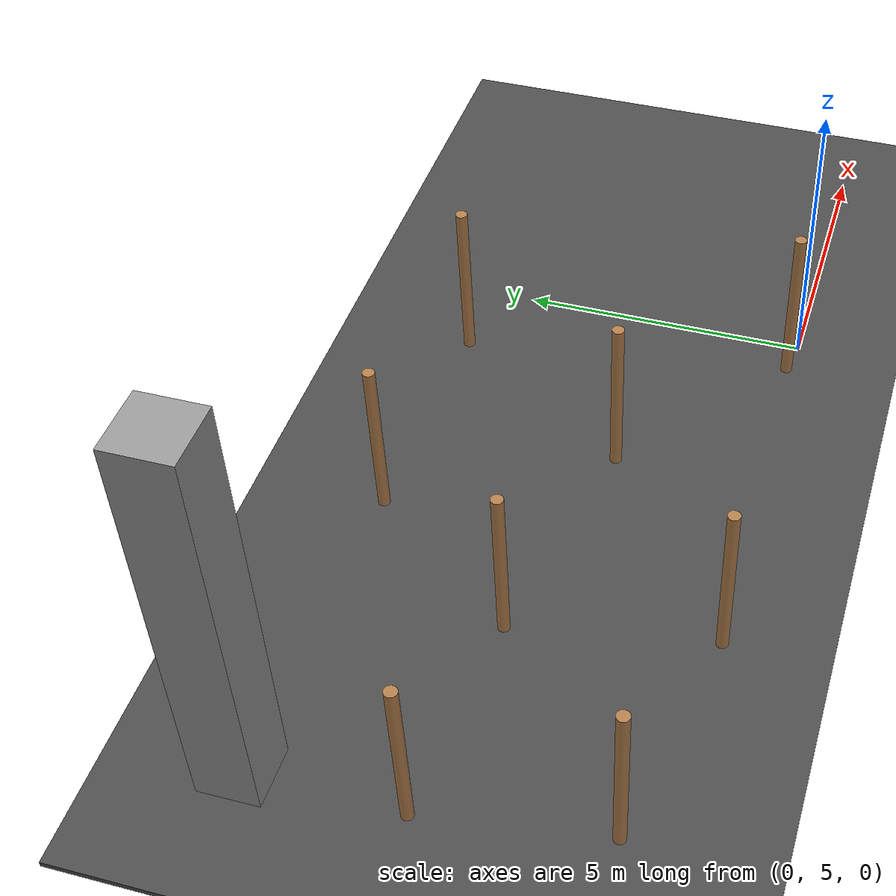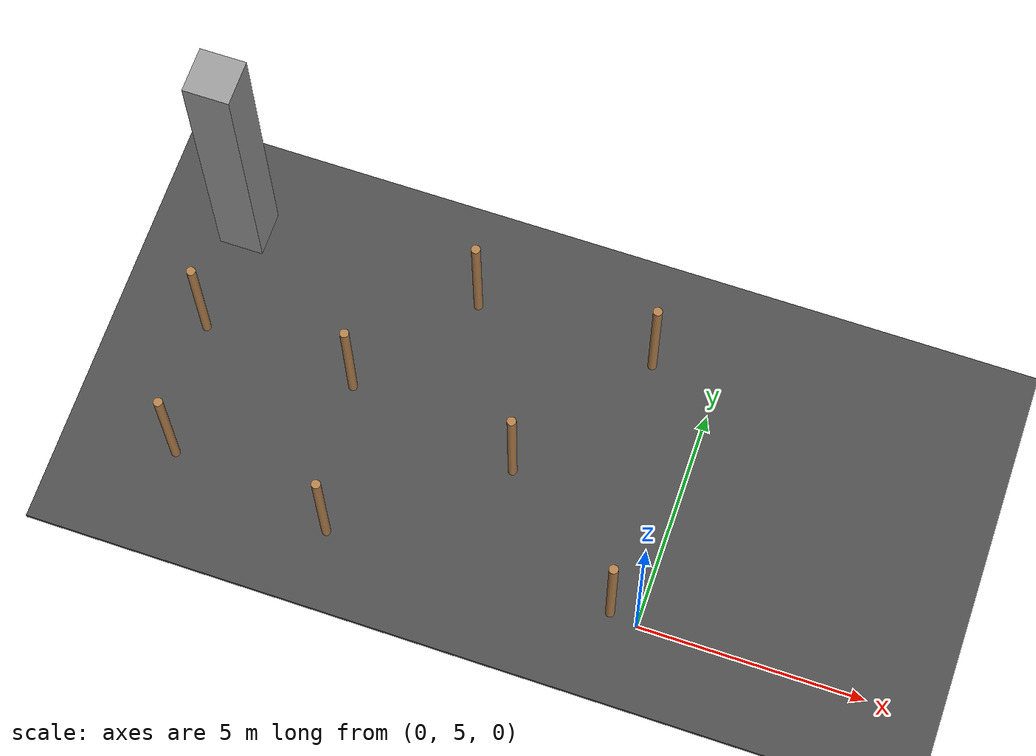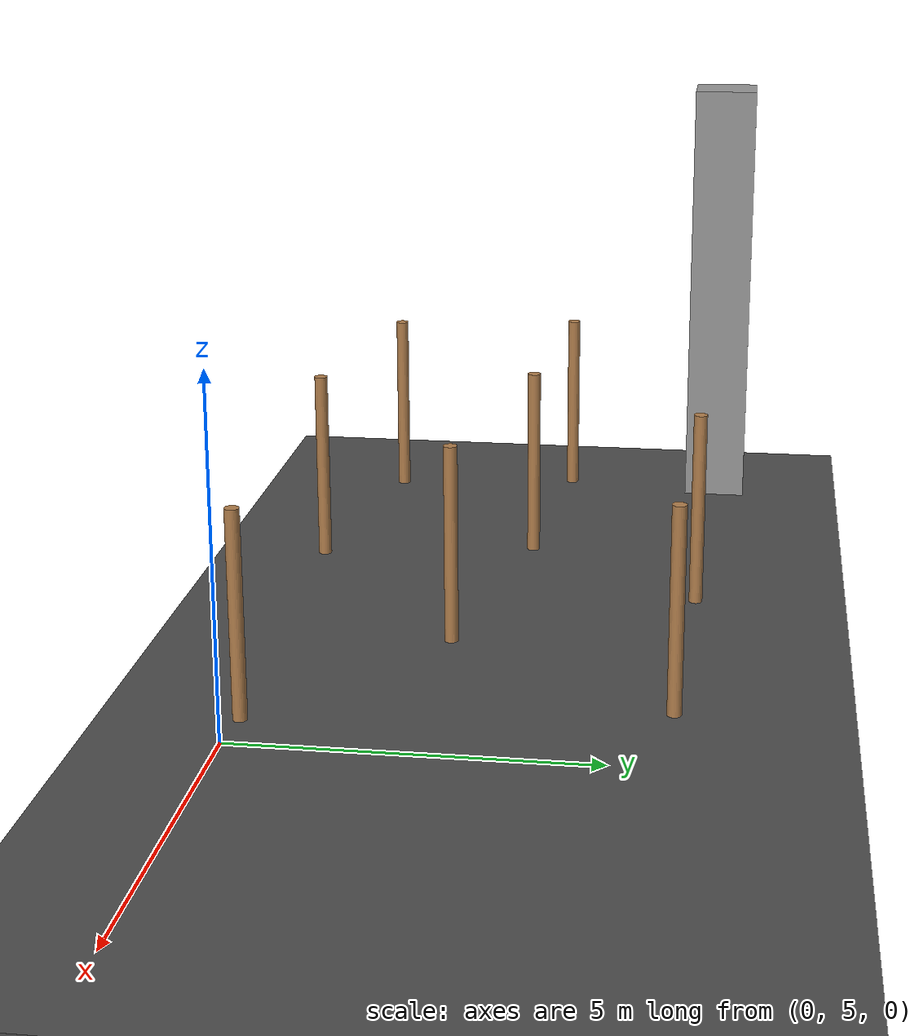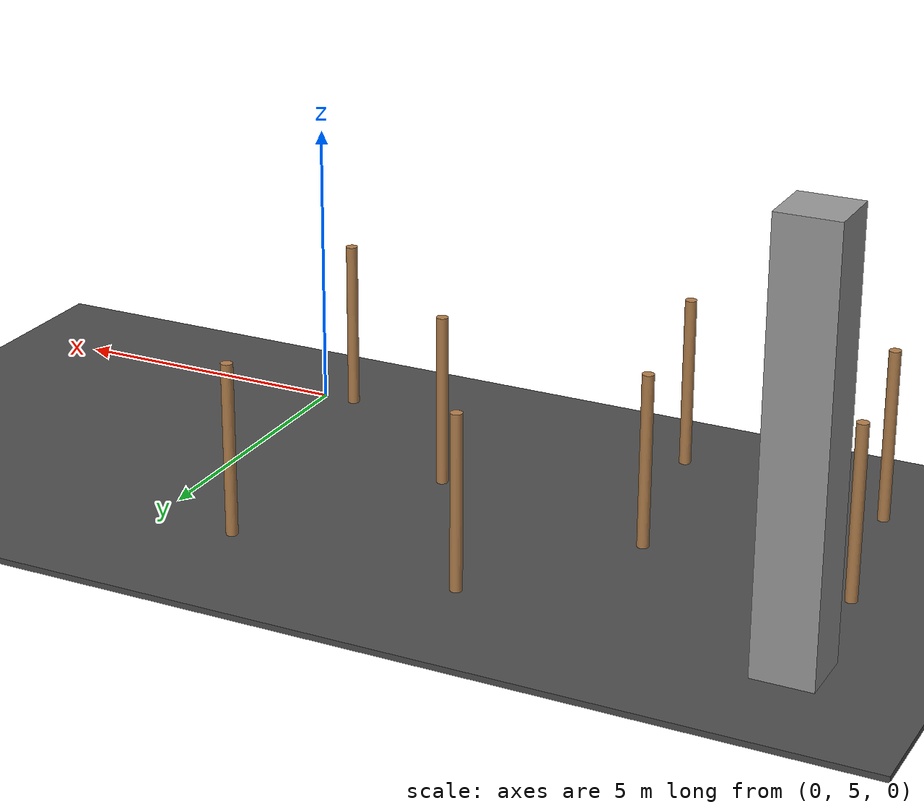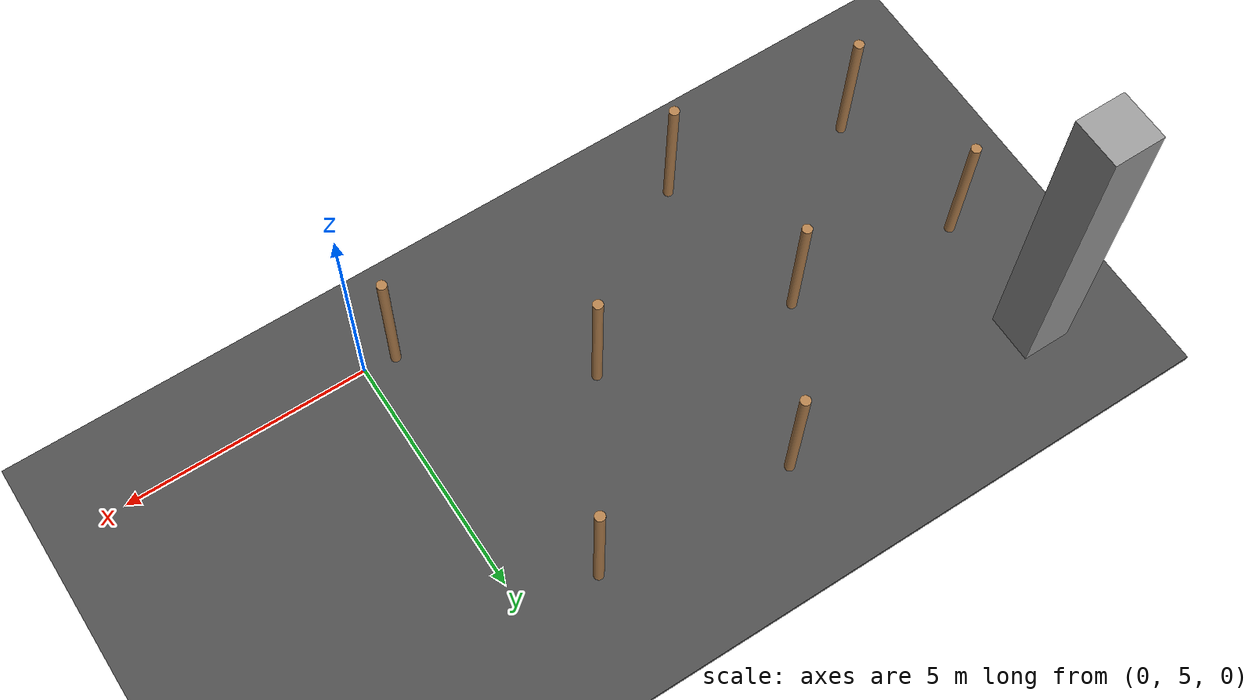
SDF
<sdf version="1.7">
 <world name="default">
  <model name="asphalt_plane">
   <pose>-0.054783 -0.070898 0 0 -0 0</pose>
   <static>1</static>
   <link name="link">
    <collision name="collision"><geometry><box><size>42.4866 44.6464 0.1</size></box></geometry></collision>
    <visual name="visual">
     <cast_shadows>0</cast_shadows>
     <geometry><box><size>42.4866 44.6464 0.1</size></box></geometry>
     <material>
      <script>
       <uri>model://asphalt_plane/materials/scripts</uri>
       <uri>model://asphalt_plane/materials/textures</uri>
       <name>vrc/asphalt</name>
      </script>
     </material>
    </visual>
   </link>
  </model>
  <model name="wooden_cylinder1_clone_0">
   <pose>-11.0868 8.52775 -6e-05 0 -0 0</pose>
   <link name="wooden_cylinder::link_0">
    <pose>0 0 1.5 0 -0 0</pose>
    <inertial>
     <mass>1</mass>
     <inertia><ixx>0.145833</ixx><ixy>0</ixy><ixz>0</ixz><iyy>0.145833</iyy><iyz>0</iyz><izz>0.125</izz></inertia>
    </inertial>
    <visual name="visual">
     <geometry><cylinder><radius>0.1</radius><length>3</length></cylinder></geometry>
     <material>
      <lighting>1</lighting>
      <script><uri>file://media/materials/scripts/gazebo.material</uri><name>Gazebo/Wood</name></script>
      <ambient>0.3 0.3 0.3 1</ambient>
      <diffuse>0.7 0.7 0.7 1</diffuse>
      <specular>0.01 0.01 0.01 1</specular>
      <emissive>0 0 0 1</emissive>
      <shader type="vertex"><normal_map>__default__</normal_map></shader>
     </material>
    </visual>
    <collision name="collision">
     <geometry><cylinder><radius>0.1</radius><length>3</length></cylinder></geometry>
     <surface>
      <friction>
       <ode><mu>1</mu><mu2>1</mu2><fdir1>0 0 0</fdir1><slip1>0</slip1><slip2>0</slip2></ode>
       <torsional>
        <coefficient>1</coefficient>
        <patch_radius>0</patch_radius>
        <surface_radius>0</surface_radius>
        <use_patch_radius>1</use_patch_radius>
        <ode><slip>0</slip></ode>
       </torsional>
      </friction>
      <bounce><restitution_coefficient>0</restitution_coefficient><threshold>1e+06</threshold></bounce>
      <contact>
       <collide_without_contact>0</collide_without_contact>
       <collide_without_contact_bitmask>1</collide_without_contact_bitmask>
       <collide_bitmask>1</collide_bitmask>
       <ode>
        <soft_cfm>0</soft_cfm>
        <soft_erp>0.2</soft_erp>
        <kp>1e+13</kp>
        <kd>1</kd>
        <max_vel>0.01</max_vel>
        <min_depth>0</min_depth>
       </ode>
       <bullet>
        <split_impulse>1</split_impulse>
        <split_impulse_penetration_threshold>-0.01</split_impulse_penetration_threshold>
        <soft_cfm>0</soft_cfm>
        <soft_erp>0.2</soft_erp>
        <kp>1e+13</kp>
        <kd>1</kd>
       </bullet>
      </contact>
     </surface>
    </collision>
   </link>
   <static>1</static>
  </model>
  <model name="wooden_cylinder1_clone_2">
   <pose>-10.6472 5.54644 0.0002 0 -0 0</pose>
   <link name="wooden_cylinder::link_0">
    <pose>0 0 1.5 0 -0 0</pose>
    <inertial>
     <mass>1</mass>
     <inertia><ixx>0.145833</ixx><ixy>0</ixy><ixz>0</ixz><iyy>0.145833</iyy><iyz>0</iyz><izz>0.125</izz></inertia>
    </inertial>
    <visual name="visual">
     <geometry><cylinder><radius>0.1</radius><length>3</length></cylinder></geometry>
     <material>
      <lighting>1</lighting>
      <script><uri>file://media/materials/scripts/gazebo.material</uri><name>Gazebo/Wood</name></script>
      <ambient>0.3 0.3 0.3 1</ambient>
      <diffuse>0.7 0.7 0.7 1</diffuse>
      <specular>0.01 0.01 0.01 1</specular>
      <emissive>0 0 0 1</emissive>
      <shader type="vertex"><normal_map>__default__</normal_map></shader>
     </material>
    </visual>
    <collision name="collision">
     <geometry><cylinder><radius>0.1</radius><length>3</length></cylinder></geometry>
     <surface>
      <friction>
       <ode><mu>1</mu><mu2>1</mu2><fdir1>0 0 0</fdir1><slip1>0</slip1><slip2>0</slip2></ode>
       <torsional>
        <coefficient>1</coefficient>
        <patch_radius>0</patch_radius>
        <surface_radius>0</surface_radius>
        <use_patch_radius>1</use_patch_radius>
        <ode><slip>0</slip></ode>
       </torsional>
      </friction>
      <bounce><restitution_coefficient>0</restitution_coefficient><threshold>1e+06</threshold></bounce>
      <contact>
       <collide_without_contact>0</collide_without_contact>
       <collide_without_contact_bitmask>1</collide_without_contact_bitmask>
       <collide_bitmask>1</collide_bitmask>
       <ode>
        <soft_cfm>0</soft_cfm>
        <soft_erp>0.2</soft_erp>
        <kp>1e+13</kp>
        <kd>1</kd>
        <max_vel>0.01</max_vel>
        <min_depth>0</min_depth>
       </ode>
       <bullet>
        <split_impulse>1</split_impulse>
        <split_impulse_penetration_threshold>-0.01</split_impulse_penetration_threshold>
        <soft_cfm>0</soft_cfm>
        <soft_erp>0.2</soft_erp>
        <kp>1e+13</kp>
        <kd>1</kd>
       </bullet>
      </contact>
     </surface>
    </collision>
   </link>
   <static>1</static>
  </model>
  <model name="wooden_cylinder1_clone_29">
   <pose>-6.93659 4.8959 2e-05 0 -0 0</pose>
   <link name="wooden_cylinder::link_0">
    <pose>0 0 1.5 0 -0 0</pose>
    <inertial>
     <mass>1</mass>
     <inertia><ixx>0.145833</ixx><ixy>0</ixy><ixz>0</ixz><iyy>0.145833</iyy><iyz>0</iyz><izz>0.125</izz></inertia>
    </inertial>
    <visual name="visual">
     <geometry><cylinder><radius>0.1</radius><length>3</length></cylinder></geometry>
     <material>
      <lighting>1</lighting>
      <script><uri>file://media/materials/scripts/gazebo.material</uri><name>Gazebo/Wood</name></script>
      <ambient>0.3 0.3 0.3 1</ambient>
      <diffuse>0.7 0.7 0.7 1</diffuse>
      <specular>0.01 0.01 0.01 1</specular>
      <emissive>0 0 0 1</emissive>
      <shader type="vertex"><normal_map>__default__</normal_map></shader>
     </material>
    </visual>
    <collision name="collision">
     <geometry><cylinder><radius>0.1</radius><length>3</length></cylinder></geometry>
     <surface>
      <friction>
       <ode><mu>1</mu><mu2>1</mu2><fdir1>0 0 0</fdir1><slip1>0</slip1><slip2>0</slip2></ode>
       <torsional>
        <coefficient>1</coefficient>
        <patch_radius>0</patch_radius>
        <surface_radius>0</surface_radius>
        <use_patch_radius>1</use_patch_radius>
        <ode><slip>0</slip></ode>
       </torsional>
      </friction>
      <bounce><restitution_coefficient>0</restitution_coefficient><threshold>1e+06</threshold></bounce>
      <contact>
       <collide_without_contact>0</collide_without_contact>
       <collide_without_contact_bitmask>1</collide_without_contact_bitmask>
       <collide_bitmask>1</collide_bitmask>
       <ode>
        <soft_cfm>0</soft_cfm>
        <soft_erp>0.2</soft_erp>
        <kp>1e+13</kp>
        <kd>1</kd>
        <max_vel>0.01</max_vel>
        <min_depth>0</min_depth>
       </ode>
       <bullet>
        <split_impulse>1</split_impulse>
        <split_impulse_penetration_threshold>-0.01</split_impulse_penetration_threshold>
        <soft_cfm>0</soft_cfm>
        <soft_erp>0.2</soft_erp>
        <kp>1e+13</kp>
        <kd>1</kd>
       </bullet>
      </contact>
     </surface>
    </collision>
   </link>
   <static>1</static>
  </model>
  <model name="wooden_cylinder1_clone_31">
   <pose>-7.54136 8.21907 -8e-05 0 -0 0</pose>
   <link name="wooden_cylinder::link_0">
    <pose>0 0 1.5 0 -0 0</pose>
    <inertial>
     <mass>1</mass>
     <inertia><ixx>0.145833</ixx><ixy>0</ixy><ixz>0</ixz><iyy>0.145833</iyy><iyz>0</iyz><izz>0.125</izz></inertia>
    </inertial>
    <visual name="visual">
     <geometry><cylinder><radius>0.1</radius><length>3</length></cylinder></geometry>
     <material>
      <lighting>1</lighting>
      <script><uri>file://media/materials/scripts/gazebo.material</uri><name>Gazebo/Wood</name></script>
      <ambient>0.3 0.3 0.3 1</ambient>
      <diffuse>0.7 0.7 0.7 1</diffuse>
      <specular>0.01 0.01 0.01 1</specular>
      <emissive>0 0 0 1</emissive>
      <shader type="vertex"><normal_map>__default__</normal_map></shader>
     </material>
    </visual>
    <collision name="collision">
     <geometry><cylinder><radius>0.1</radius><length>3</length></cylinder></geometry>
     <surface>
      <friction>
       <ode><mu>1</mu><mu2>1</mu2><fdir1>0 0 0</fdir1><slip1>0</slip1><slip2>0</slip2></ode>
       <torsional>
        <coefficient>1</coefficient>
        <patch_radius>0</patch_radius>
        <surface_radius>0</surface_radius>
        <use_patch_radius>1</use_patch_radius>
        <ode><slip>0</slip></ode>
       </torsional>
      </friction>
      <bounce><restitution_coefficient>0</restitution_coefficient><threshold>1e+06</threshold></bounce>
      <contact>
       <collide_without_contact>0</collide_without_contact>
       <collide_without_contact_bitmask>1</collide_without_contact_bitmask>
       <collide_bitmask>1</collide_bitmask>
       <ode>
        <soft_cfm>0</soft_cfm>
        <soft_erp>0.2</soft_erp>
        <kp>1e+13</kp>
        <kd>1</kd>
        <max_vel>0.01</max_vel>
        <min_depth>0</min_depth>
       </ode>
       <bullet>
        <split_impulse>1</split_impulse>
        <split_impulse_penetration_threshold>-0.01</split_impulse_penetration_threshold>
        <soft_cfm>0</soft_cfm>
        <soft_erp>0.2</soft_erp>
        <kp>1e+13</kp>
        <kd>1</kd>
       </bullet>
      </contact>
     </surface>
    </collision>
   </link>
   <static>1</static>
  </model>
  <model name="wooden_cylinder1_clone_33">
   <pose>-3.60261 7.46972 3e-05 0 -0 0</pose>
   <link name="wooden_cylinder::link_0">
    <pose>0 0 1.5 0 -0 0</pose>
    <inertial>
     <mass>1</mass>
     <inertia><ixx>0.145833</ixx><ixy>0</ixy><ixz>0</ixz><iyy>0.145833</iyy><iyz>0</iyz><izz>0.125</izz></inertia>
    </inertial>
    <visual name="visual">
     <geometry><cylinder><radius>0.1</radius><length>3</length></cylinder></geometry>
     <material>
      <lighting>1</lighting>
      <script><uri>file://media/materials/scripts/gazebo.material</uri><name>Gazebo/Wood</name></script>
      <ambient>0.3 0.3 0.3 1</ambient>
      <diffuse>0.7 0.7 0.7 1</diffuse>
      <specular>0.01 0.01 0.01 1</specular>
      <emissive>0 0 0 1</emissive>
      <shader type="vertex"><normal_map>__default__</normal_map></shader>
     </material>
    </visual>
    <collision name="collision">
     <geometry><cylinder><radius>0.1</radius><length>3</length></cylinder></geometry>
     <surface>
      <friction>
       <ode><mu>1</mu><mu2>1</mu2><fdir1>0 0 0</fdir1><slip1>0</slip1><slip2>0</slip2></ode>
       <torsional>
        <coefficient>1</coefficient>
        <patch_radius>0</patch_radius>
        <surface_radius>0</surface_radius>
        <use_patch_radius>1</use_patch_radius>
        <ode><slip>0</slip></ode>
       </torsional>
      </friction>
      <bounce><restitution_coefficient>0</restitution_coefficient><threshold>1e+06</threshold></bounce>
      <contact>
       <collide_without_contact>0</collide_without_contact>
       <collide_without_contact_bitmask>1</collide_without_contact_bitmask>
       <collide_bitmask>1</collide_bitmask>
       <ode>
        <soft_cfm>0</soft_cfm>
        <soft_erp>0.2</soft_erp>
        <kp>1e+13</kp>
        <kd>1</kd>
        <max_vel>0.01</max_vel>
        <min_depth>0</min_depth>
       </ode>
       <bullet>
        <split_impulse>1</split_impulse>
        <split_impulse_penetration_threshold>-0.01</split_impulse_penetration_threshold>
        <soft_cfm>0</soft_cfm>
        <soft_erp>0.2</soft_erp>
        <kp>1e+13</kp>
        <kd>1</kd>
       </bullet>
      </contact>
     </surface>
    </collision>
   </link>
   <static>1</static>
  </model>
  <model name="wooden_cylinder1_clone_34">
   <pose>-0.627193 5.1014 0.00013 0 -0 0</pose>
   <link name="wooden_cylinder::link_0">
    <pose>0 0 1.5 0 -0 0</pose>
    <inertial>
     <mass>1</mass>
     <inertia><ixx>0.145833</ixx><ixy>0</ixy><ixz>0</ixz><iyy>0.145833</iyy><iyz>0</iyz><izz>0.125</izz></inertia>
    </inertial>
    <visual name="visual">
     <geometry><cylinder><radius>0.1</radius><length>3</length></cylinder></geometry>
     <material>
      <lighting>1</lighting>
      <script><uri>file://media/materials/scripts/gazebo.material</uri><name>Gazebo/Wood</name></script>
      <ambient>0.3 0.3 0.3 1</ambient>
      <diffuse>0.7 0.7 0.7 1</diffuse>
      <specular>0.01 0.01 0.01 1</specular>
      <emissive>0 0 0 1</emissive>
      <shader type="vertex"><normal_map>__default__</normal_map></shader>
     </material>
    </visual>
    <collision name="collision">
     <geometry><cylinder><radius>0.1</radius><length>3</length></cylinder></geometry>
     <surface>
      <friction>
       <ode><mu>1</mu><mu2>1</mu2><fdir1>0 0 0</fdir1><slip1>0</slip1><slip2>0</slip2></ode>
       <torsional>
        <coefficient>1</coefficient>
        <patch_radius>0</patch_radius>
        <surface_radius>0</surface_radius>
        <use_patch_radius>1</use_patch_radius>
        <ode><slip>0</slip></ode>
       </torsional>
      </friction>
      <bounce><restitution_coefficient>0</restitution_coefficient><threshold>1e+06</threshold></bounce>
      <contact>
       <collide_without_contact>0</collide_without_contact>
       <collide_without_contact_bitmask>1</collide_without_contact_bitmask>
       <collide_bitmask>1</collide_bitmask>
       <ode>
        <soft_cfm>0</soft_cfm>
        <soft_erp>0.2</soft_erp>
        <kp>1e+13</kp>
        <kd>1</kd>
        <max_vel>0.01</max_vel>
        <min_depth>0</min_depth>
       </ode>
       <bullet>
        <split_impulse>1</split_impulse>
        <split_impulse_penetration_threshold>-0.01</split_impulse_penetration_threshold>
        <soft_cfm>0</soft_cfm>
        <soft_erp>0.2</soft_erp>
        <kp>1e+13</kp>
        <kd>1</kd>
       </bullet>
      </contact>
     </surface>
    </collision>
   </link>
   <static>1</static>
  </model>
  <model name="wooden_cylinder1_clone_39">
   <pose>-1.49559 10.7742 -8e-05 0 -0 0</pose>
   <link name="wooden_cylinder::link_0">
    <pose>0 0 1.5 0 -0 0</pose>
    <inertial>
     <mass>1</mass>
     <inertia><ixx>0.145833</ixx><ixy>0</ixy><ixz>0</ixz><iyy>0.145833</iyy><iyz>0</iyz><izz>0.125</izz></inertia>
    </inertial>
    <visual name="visual">
     <geometry><cylinder><radius>0.1</radius><length>3</length></cylinder></geometry>
     <material>
      <lighting>1</lighting>
      <script><uri>file://media/materials/scripts/gazebo.material</uri><name>Gazebo/Wood</name></script>
      <ambient>0.3 0.3 0.3 1</ambient>
      <diffuse>0.7 0.7 0.7 1</diffuse>
      <specular>0.01 0.01 0.01 1</specular>
      <emissive>0 0 0 1</emissive>
      <shader type="vertex"><normal_map>__default__</normal_map></shader>
     </material>
    </visual>
    <collision name="collision">
     <geometry><cylinder><radius>0.1</radius><length>3</length></cylinder></geometry>
     <surface>
      <friction>
       <ode><mu>1</mu><mu2>1</mu2><fdir1>0 0 0</fdir1><slip1>0</slip1><slip2>0</slip2></ode>
       <torsional>
        <coefficient>1</coefficient>
        <patch_radius>0</patch_radius>
        <surface_radius>0</surface_radius>
        <use_patch_radius>1</use_patch_radius>
        <ode><slip>0</slip></ode>
       </torsional>
      </friction>
      <bounce><restitution_coefficient>0</restitution_coefficient><threshold>1e+06</threshold></bounce>
      <contact>
       <collide_without_contact>0</collide_without_contact>
       <collide_without_contact_bitmask>1</collide_without_contact_bitmask>
       <collide_bitmask>1</collide_bitmask>
       <ode>
        <soft_cfm>0</soft_cfm>
        <soft_erp>0.2</soft_erp>
        <kp>1e+13</kp>
        <kd>1</kd>
        <max_vel>0.01</max_vel>
        <min_depth>0</min_depth>
       </ode>
       <bullet>
        <split_impulse>1</split_impulse>
        <split_impulse_penetration_threshold>-0.01</split_impulse_penetration_threshold>
        <soft_cfm>0</soft_cfm>
        <soft_erp>0.2</soft_erp>
        <kp>1e+13</kp>
        <kd>1</kd>
       </bullet>
      </contact>
     </surface>
    </collision>
   </link>
   <static>1</static>
  </model>
  <model name="wooden_cylinder1_clone_42">
   <pose>-5.57305 10.9136 5e-05 0 -0 0</pose>
   <link name="wooden_cylinder::link_0">
    <pose>0 0 1.5 0 -0 0</pose>
    <inertial>
     <mass>1</mass>
     <inertia><ixx>0.145833</ixx><ixy>0</ixy><ixz>0</ixz><iyy>0.145833</iyy><iyz>0</iyz><izz>0.125</izz></inertia>
    </inertial>
    <visual name="visual">
     <geometry><cylinder><radius>0.1</radius><length>3</length></cylinder></geometry>
     <material>
      <lighting>1</lighting>
      <script><uri>file://media/materials/scripts/gazebo.material</uri><name>Gazebo/Wood</name></script>
      <ambient>0.3 0.3 0.3 1</ambient>
      <diffuse>0.7 0.7 0.7 1</diffuse>
      <specular>0.01 0.01 0.01 1</specular>
      <emissive>0 0 0 1</emissive>
      <shader type="vertex"><normal_map>__default__</normal_map></shader>
     </material>
    </visual>
    <collision name="collision">
     <geometry><cylinder><radius>0.1</radius><length>3</length></cylinder></geometry>
     <surface>
      <friction>
       <ode><mu>1</mu><mu2>1</mu2><fdir1>0 0 0</fdir1><slip1>0</slip1><slip2>0</slip2></ode>
       <torsional>
        <coefficient>1</coefficient>
        <patch_radius>0</patch_radius>
        <surface_radius>0</surface_radius>
        <use_patch_radius>1</use_patch_radius>
        <ode><slip>0</slip></ode>
       </torsional>
      </friction>
      <bounce><restitution_coefficient>0</restitution_coefficient><threshold>1e+06</threshold></bounce>
      <contact>
       <collide_without_contact>0</collide_without_contact>
       <collide_without_contact_bitmask>1</collide_without_contact_bitmask>
       <collide_bitmask>1</collide_bitmask>
       <ode>
        <soft_cfm>0</soft_cfm>
        <soft_erp>0.2</soft_erp>
        <kp>1e+13</kp>
        <kd>1</kd>
        <max_vel>0.01</max_vel>
        <min_depth>0</min_depth>
       </ode>
       <bullet>
        <split_impulse>1</split_impulse>
        <split_impulse_penetration_threshold>-0.01</split_impulse_penetration_threshold>
        <soft_cfm>0</soft_cfm>
        <soft_erp>0.2</soft_erp>
        <kp>1e+13</kp>
        <kd>1</kd>
       </bullet>
      </contact>
     </surface>
    </collision>
   </link>
   <static>1</static>
  </model>
  <model name="unit_box">
   <pose>-11.0491 11.0579 3.59634 0 -0 0</pose>
   <link name="link">
    <inertial>
     <mass>1</mass>
     <inertia>
      <ixx>0.166667</ixx>
      <ixy>0</ixy>
      <ixz>0</ixz>
      <iyy>0.166667</iyy>
      <iyz>0</iyz>
      <izz>0.166667</izz>
     </inertia>
    </inertial>
    <collision name="collision"><geometry><box><size>1 1 7.01643</size></box></geometry></collision>
    <visual name="visual">
     <geometry><box><size>1 1 7.01643</size></box></geometry>
     <material>
      <script><name>Gazebo/Grey</name><uri>file://media/materials/scripts/gazebo.material</uri></script>
     </material>
    </visual>
   </link>
  </model>
 </world>
</sdf>
